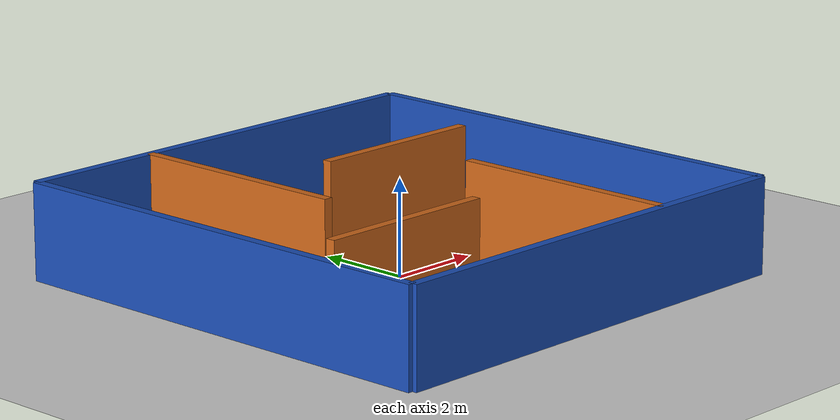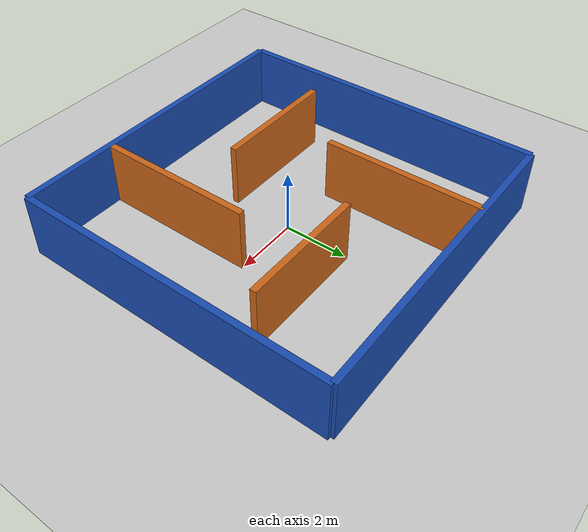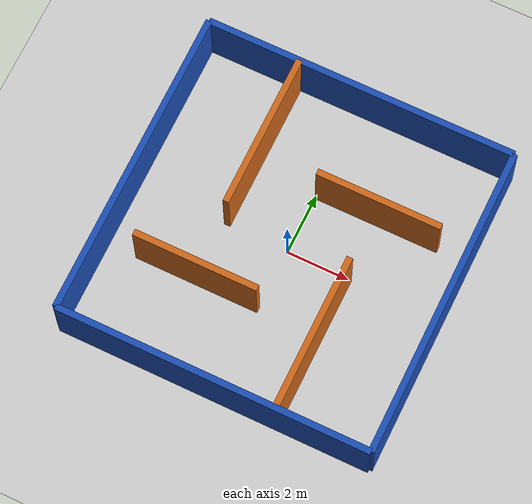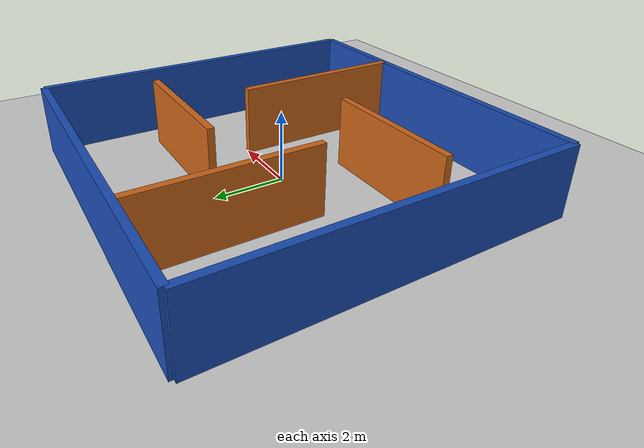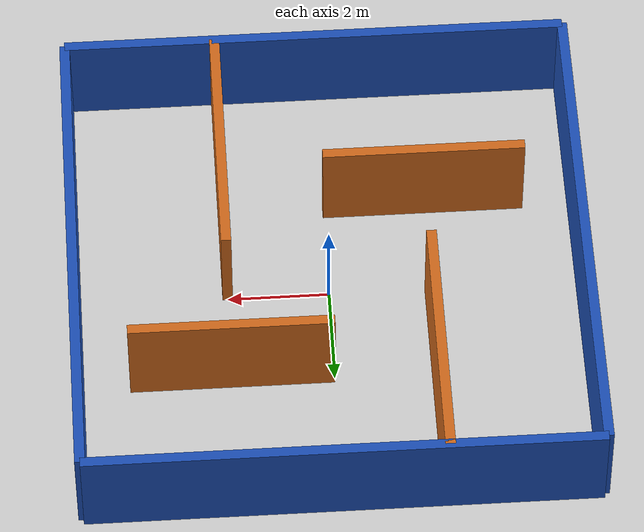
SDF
<?xml version="1.0" ?>
<sdf version="1.8">
  <world name="maze_medium">

    <physics name="1ms" type="ignored">
      <max_step_size>0.001</max_step_size>
      <real_time_factor>1.0</real_time_factor>
    </physics>

    <plugin filename="gz-sim-physics-system" name="gz::sim::systems::Physics"/>
    <plugin filename="gz-sim-user-commands-system" name="gz::sim::systems::UserCommands"/>
    <plugin filename="gz-sim-scene-broadcaster-system" name="gz::sim::systems::SceneBroadcaster"/>

    <plugin filename="gz-sim-sensors-system" name="gz::sim::systems::Sensors">
      <render_engine>ogre2</render_engine>
    </plugin>

    <light type="directional" name="sun_maze">
      <cast_shadows>true</cast_shadows>
      <pose>0 0 10 0 0 0</pose>
      <diffuse>0.8 0.8 0.8 1</diffuse>
      <specular>0.2 0.2 0.2 1</specular>
      <direction>-0.5 0.1 -0.9</direction>
    </light>

    <model name="ground_plane">
      <static>true</static>
      <link name="link">
        <collision name="collision">
          <geometry><plane><normal>0 0 1</normal><size>100 100</size></plane></geometry>
        </collision>
        <visual name="visual">
          <geometry><plane><normal>0 0 1</normal><size>100 100</size></plane></geometry>
          <material>
            <ambient>0.8 0.8 0.8 1</ambient>
            <diffuse>0.8 0.8 0.8 1</diffuse>
            <specular>0.8 0.8 0.8 1</specular>
          </material>
        </visual>
      </link>
    </model>

    <model name='medium_maze'>
      <static>true</static>
      <pose>0 0 0 0 0 0</pose>

      <link name='Wall_Top'>
        <pose>0 5 1 0 0 0</pose>
        <visual name='v'><geometry><box><size>10 0.2 2</size></box></geometry><material><diffuse>0.1 0.3 0.7 1</diffuse></material></visual>
        <collision name='c'><geometry><box><size>10 0.2 2</size></box></geometry></collision>
      </link>
      <link name='Wall_Bottom'>
        <pose>0 -5 1 0 0 0</pose>
        <visual name='v'><geometry><box><size>10 0.2 2</size></box></geometry><material><diffuse>0.1 0.3 0.7 1</diffuse></material></visual>
        <collision name='c'><geometry><box><size>10 0.2 2</size></box></geometry></collision>
      </link>
      <link name='Wall_Left'>
        <pose>-5 0 1 0 0 0</pose>
        <visual name='v'><geometry><box><size>0.2 10 2</size></box></geometry><material><diffuse>0.1 0.3 0.7 1</diffuse></material></visual>
        <collision name='c'><geometry><box><size>0.2 10 2</size></box></geometry></collision>
      </link>
      <link name='Wall_Right'>
        <pose>5 0 1 0 0 0</pose>
        <visual name='v'><geometry><box><size>0.2 10 2</size></box></geometry><material><diffuse>0.1 0.3 0.7 1</diffuse></material></visual>
        <collision name='c'><geometry><box><size>0.2 10 2</size></box></geometry></collision>
      </link>

      <link name='Inner_1'>
        <pose>2 2 1 0 0 0</pose>
        <visual name='v'><geometry><box><size>4 0.2 2</size></box></geometry><material><diffuse>0.8 0.4 0.1 1</diffuse></material></visual>
        <collision name='c'><geometry><box><size>4 0.2 2</size></box></geometry></collision>
      </link>

      <link name='Inner_2'>
        <pose>-2 -2 1 0 0 0</pose>
        <visual name='v'><geometry><box><size>4 0.2 2</size></box></geometry><material><diffuse>0.8 0.4 0.1 1</diffuse></material></visual>
        <collision name='c'><geometry><box><size>4 0.2 2</size></box></geometry></collision>
      </link>

      <link name='Inner_3'>
        <pose>-2 2.5 1 0 0 1.57</pose>
        <visual name='v'><geometry><box><size>5 0.2 2</size></box></geometry><material><diffuse>0.8 0.4 0.1 1</diffuse></material></visual>
        <collision name='c'><geometry><box><size>5 0.2 2</size></box></geometry></collision>
      </link>

      <link name='Inner_4'>
        <pose>2 -2.5 1 0 0 1.57</pose>
        <visual name='v'><geometry><box><size>5 0.2 2</size></box></geometry><material><diffuse>0.8 0.4 0.1 1</diffuse></material></visual>
        <collision name='c'><geometry><box><size>5 0.2 2</size></box></geometry></collision>
      </link>

      </model>
  </world>
</sdf>
